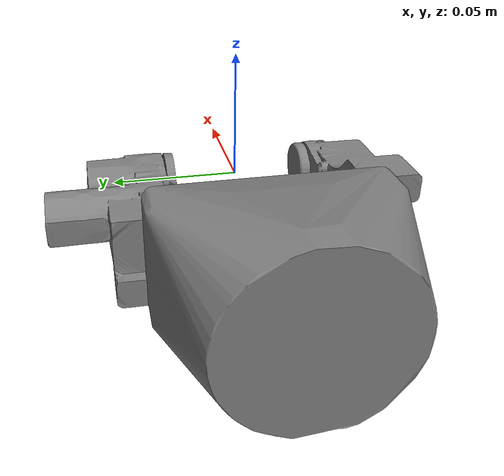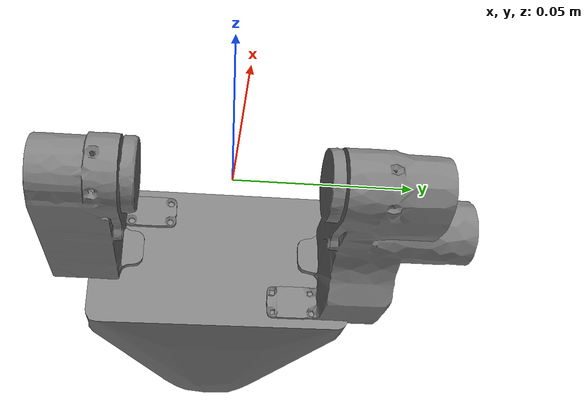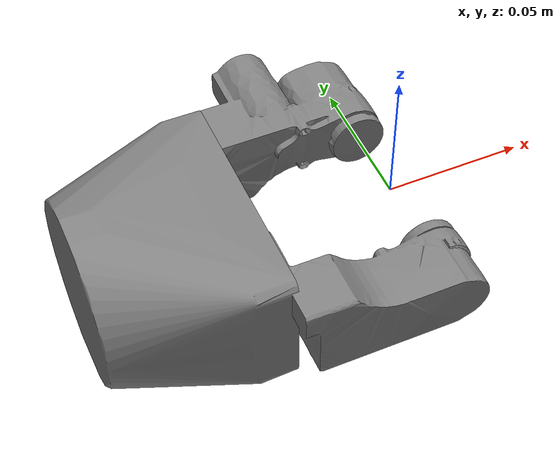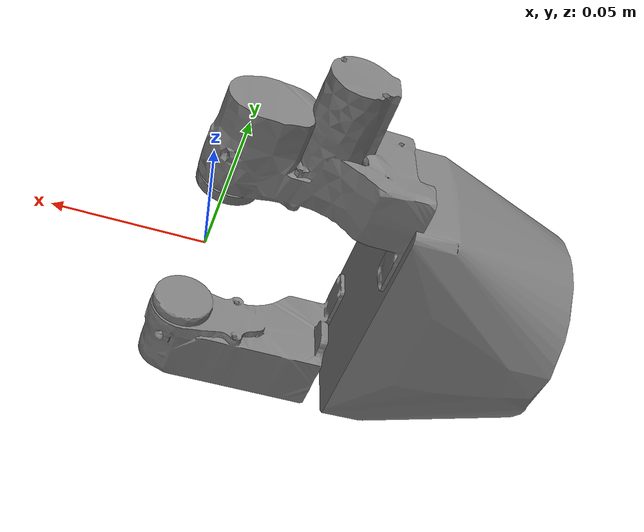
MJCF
<mujoco model="parallel_jaw">
    <compiler autolimits="true"/>
    <asset>
        <mesh name="left_finger" file="../assets/hand_meshes/left_finger.obj"/>
        <mesh name="right_finger" file="../assets/hand_meshes/right_finger.obj"/>
        <mesh name="gripper_base" file="../assets/hand_meshes/gripper_base.obj"/>
    </asset>
    <actuator>
        <general dyntype="none" biastype="affine"  tendon="split1" forcerange="-800 800" ctrlrange="0 255" gainprm="0.1 0 0" biasprm="0 -1000 -100"/>
    </actuator>
    <worldbody>
        <body name="gripper_base" pos="0.0 0 0.00" quat="0.5 0.5 0.5 0.5">
            <geom pos="0 0 0." quat="1 0 0 0" type="mesh" mesh="gripper_base" density="5000" solref="0.01 1.1" solimp="1 1 0" group="1" name="hand_visual"/>

            <body name="left_finger" pos="-0.0255 0 0" quat="1 0 0 0">
                <joint name="finger_joint1" pos="0 0 0" axis="1 0 0" type="slide" limited="true" range="0.0 0.0255" armature="0.1" damping="1" />
                <geom type="mesh" mesh="left_finger" contype="0" conaffinity="0" group="1"  name="finger_l_visual" rgba="0.499 0.499 0.499 1" />
            </body>
            <body name="right_finger" pos="0.0255 0 0" quat="0. 0 0 1.0">
                <joint name="finger_joint2" pos="0 0 0" axis="1 0 0" type="slide" limited="true" range="0.0 0.0255" armature="0.1" damping="1"/>
                <geom quat="0 0 0 1" type="mesh" mesh="right_finger" contype="0" conaffinity="0" group="1"  name="finger2_visual" rgba="0.499 0.499 0.499 1" />
            </body>
        </body>
    </worldbody>
    <tendon>
        <fixed name="split1">
            <joint joint="finger_joint1" coef="0.5"/>
            <joint joint="finger_joint2" coef="0.5"/>
        </fixed>
    </tendon>
    <equality>
        <joint joint1="finger_joint1" joint2="finger_joint2" polycoef="0 1 0 0 0" solimp="0.95 0.99 0.001" solref="0.005 1"/>
    </equality>
</mujoco>
